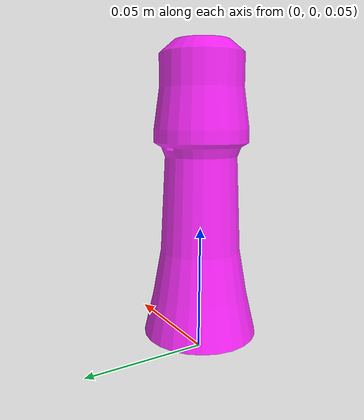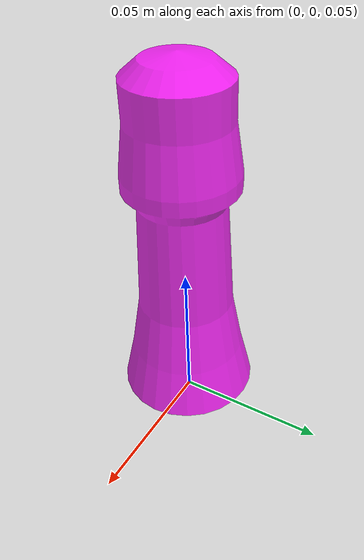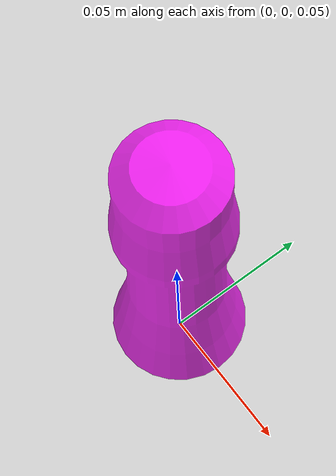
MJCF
<mujoco model="bottom_watertight_tiny">
  <default>
    <default group="2" type="mesh" contype="0" conaffinity="0">
      <geom group="2" type="mesh" contype="0" conaffinity="0"/>
    </default>
    <default group="3" type="mesh">
      <geom group="3" type="mesh"/>
    </default>
  </default>
  <asset>
    <mesh file="bottom_watertight_tiny.obj"/>
    <mesh file="bottom_watertight_tiny_collision_0.obj"/>
    <mesh file="bottom_watertight_tiny_collision_1.obj"/>
    <mesh file="bottom_watertight_tiny_collision_2.obj"/>
    <mesh file="bottom_watertight_tiny_collision_3.obj"/>
    <mesh file="bottom_watertight_tiny_collision_4.obj"/>
    <mesh file="bottom_watertight_tiny_collision_5.obj"/>
    <mesh file="bottom_watertight_tiny_collision_6.obj"/>
    <mesh file="bottom_watertight_tiny_collision_7.obj"/>
    <mesh file="bottom_watertight_tiny_collision_8.obj"/>
    <mesh file="bottom_watertight_tiny_collision_9.obj"/>
    <mesh file="bottom_watertight_tiny_collision_10.obj"/>
    <mesh file="bottom_watertight_tiny_collision_11.obj"/>
    <mesh file="bottom_watertight_tiny_collision_12.obj"/>
    <mesh file="bottom_watertight_tiny_collision_13.obj"/>
    <mesh file="bottom_watertight_tiny_collision_14.obj"/>
    <mesh file="bottom_watertight_tiny_collision_15.obj"/>
    <mesh file="bottom_watertight_tiny_collision_16.obj"/>
    <mesh file="bottom_watertight_tiny_collision_17.obj"/>
    <mesh file="bottom_watertight_tiny_collision_18.obj"/>
    <mesh file="bottom_watertight_tiny_collision_19.obj"/>
    <mesh file="bottom_watertight_tiny_collision_20.obj"/>
    <mesh file="bottom_watertight_tiny_collision_21.obj"/>
    <mesh file="bottom_watertight_tiny_collision_22.obj"/>
    <mesh file="bottom_watertight_tiny_collision_23.obj"/>
    <mesh file="bottom_watertight_tiny_collision_24.obj"/>
    <mesh file="bottom_watertight_tiny_collision_25.obj"/>
    <mesh file="bottom_watertight_tiny_collision_26.obj"/>
    <mesh file="bottom_watertight_tiny_collision_27.obj"/>
    <mesh file="bottom_watertight_tiny_collision_28.obj"/>
    <mesh file="bottom_watertight_tiny_collision_29.obj"/>
    <mesh file="bottom_watertight_tiny_collision_30.obj"/>
    <mesh file="bottom_watertight_tiny_collision_31.obj"/>
    <mesh file="bottom_watertight_tiny_collision_32.obj"/>
    <mesh file="bottom_watertight_tiny_collision_33.obj"/>
    <mesh file="bottom_watertight_tiny_collision_34.obj"/>
    <mesh file="bottom_watertight_tiny_collision_35.obj"/>
    <mesh file="bottom_watertight_tiny_collision_36.obj"/>
    <mesh file="bottom_watertight_tiny_collision_37.obj"/>
    <mesh file="bottom_watertight_tiny_collision_38.obj"/>
    <mesh file="bottom_watertight_tiny_collision_39.obj"/>
    <mesh file="bottom_watertight_tiny_collision_40.obj"/>
    <mesh file="bottom_watertight_tiny_collision_41.obj"/>
    <mesh file="bottom_watertight_tiny_collision_42.obj"/>
    <mesh file="bottom_watertight_tiny_collision_43.obj"/>
    <mesh file="bottom_watertight_tiny_collision_44.obj"/>
    <mesh file="bottom_watertight_tiny_collision_45.obj"/>
  </asset>
  <worldbody>
    <body name="bottom_watertight_tiny">
      <freejoint/>
      <geom mesh="bottom_watertight_tiny" group="2" type="mesh" rgba="1 0 1 0.8" contype="0" conaffinity="0"/>
      <geom mesh="bottom_watertight_tiny_collision_0" rgba="0.9421016590431367 0.4295423006999385 0.4772473852593627 1" group="3" type="mesh"/>
      <geom mesh="bottom_watertight_tiny_collision_1" rgba="0.1564351845515236 0.5539180612918909 0.802008377272998 1" group="3" type="mesh"/>
      <geom mesh="bottom_watertight_tiny_collision_2" rgba="0.9004269855679644 0.6677418246746807 0.19382898476810484 1" group="3" type="mesh"/>
      <geom mesh="bottom_watertight_tiny_collision_3" rgba="0.5575978403072669 0.5755522339741203 0.7672808572614295 1" group="3" type="mesh"/>
      <geom mesh="bottom_watertight_tiny_collision_4" rgba="0.050664887594296215 0.37647322269453243 0.08547653072307826 1" group="3" type="mesh"/>
      <geom mesh="bottom_watertight_tiny_collision_5" rgba="0.4213739520240328 0.32687512567219856 0.009920602645650534 1" group="3" type="mesh"/>
      <geom mesh="bottom_watertight_tiny_collision_6" rgba="0.2726108470352995 0.34344507423970083 0.08211541466282535 1" group="3" type="mesh"/>
      <geom mesh="bottom_watertight_tiny_collision_7" rgba="0.209656390244906 0.7569628128122862 0.10707746620259084 1" group="3" type="mesh"/>
      <geom mesh="bottom_watertight_tiny_collision_8" rgba="0.25317475710928106 0.7707558476400088 0.7540822614944259 1" group="3" type="mesh"/>
      <geom mesh="bottom_watertight_tiny_collision_9" rgba="0.331245156585243 0.6996805871700583 0.009986498375281982 1" group="3" type="mesh"/>
      <geom mesh="bottom_watertight_tiny_collision_10" rgba="0.3644299739436261 0.6023554082664958 0.5375104901850447 1" group="3" type="mesh"/>
      <geom mesh="bottom_watertight_tiny_collision_11" rgba="0.11351254824832557 0.9258838328475842 0.15512815887520648 1" group="3" type="mesh"/>
      <geom mesh="bottom_watertight_tiny_collision_12" rgba="0.06505928683881912 0.4292743657263626 0.7575145250857411 1" group="3" type="mesh"/>
      <geom mesh="bottom_watertight_tiny_collision_13" rgba="0.4694387354584154 0.4024197791657137 0.6528968626089501 1" group="3" type="mesh"/>
      <geom mesh="bottom_watertight_tiny_collision_14" rgba="0.38555748008515844 0.05350648839061001 0.04314232303130683 1" group="3" type="mesh"/>
      <geom mesh="bottom_watertight_tiny_collision_15" rgba="0.5018653866945066 0.28536465750207907 0.285600573605054 1" group="3" type="mesh"/>
      <geom mesh="bottom_watertight_tiny_collision_16" rgba="0.2885841742282278 0.11484371185836084 0.6374622385377419 1" group="3" type="mesh"/>
      <geom mesh="bottom_watertight_tiny_collision_17" rgba="0.2198935390615402 0.46916866972248616 0.5731089723840236 1" group="3" type="mesh"/>
      <geom mesh="bottom_watertight_tiny_collision_18" rgba="0.2653321208684818 0.24646622954153208 0.7672859701737712 1" group="3" type="mesh"/>
      <geom mesh="bottom_watertight_tiny_collision_19" rgba="0.897694818378677 0.7118719243561996 0.3061458683326824 1" group="3" type="mesh"/>
      <geom mesh="bottom_watertight_tiny_collision_20" rgba="0.8702845893420182 0.24583197183578354 0.5850663755475531 1" group="3" type="mesh"/>
      <geom mesh="bottom_watertight_tiny_collision_21" rgba="0.6159620466272289 0.1589913927677582 0.029974515071139796 1" group="3" type="mesh"/>
      <geom mesh="bottom_watertight_tiny_collision_22" rgba="0.6418068765041776 0.7568407788148714 0.3302895908270408 1" group="3" type="mesh"/>
      <geom mesh="bottom_watertight_tiny_collision_23" rgba="0.49876588439541913 0.726456532277409 0.38369284959784156 1" group="3" type="mesh"/>
      <geom mesh="bottom_watertight_tiny_collision_24" rgba="0.7062365071740999 0.984629234598314 0.3316765135285228 1" group="3" type="mesh"/>
      <geom mesh="bottom_watertight_tiny_collision_25" rgba="0.7694210651642691 0.6930414808966998 0.09524614367842332 1" group="3" type="mesh"/>
      <geom mesh="bottom_watertight_tiny_collision_26" rgba="0.2911826037413868 0.12479311797545867 0.34025567054163486 1" group="3" type="mesh"/>
      <geom mesh="bottom_watertight_tiny_collision_27" rgba="0.07095360940358841 0.4397360277175626 0.7667453877336858 1" group="3" type="mesh"/>
      <geom mesh="bottom_watertight_tiny_collision_28" rgba="0.23394590654754666 0.3329196305397468 0.1679757856385471 1" group="3" type="mesh"/>
      <geom mesh="bottom_watertight_tiny_collision_29" rgba="0.693174066530816 0.4990784067714581 0.14263645644712553 1" group="3" type="mesh"/>
      <geom mesh="bottom_watertight_tiny_collision_30" rgba="0.6622654653008889 0.6911383213170047 0.15885570962589501 1" group="3" type="mesh"/>
      <geom mesh="bottom_watertight_tiny_collision_31" rgba="0.6495744711322515 0.7399123191426145 0.36334379622761315 1" group="3" type="mesh"/>
      <geom mesh="bottom_watertight_tiny_collision_32" rgba="0.4857998602029353 0.4669579639154785 0.7336727538320122 1" group="3" type="mesh"/>
      <geom mesh="bottom_watertight_tiny_collision_33" rgba="0.1626324719127884 0.42275493461657665 0.6003403505982362 1" group="3" type="mesh"/>
      <geom mesh="bottom_watertight_tiny_collision_34" rgba="0.8028879947536873 0.8191197795249725 0.4483497909421402 1" group="3" type="mesh"/>
      <geom mesh="bottom_watertight_tiny_collision_35" rgba="0.016180955758664295 0.38387173463286384 0.10277014666387763 1" group="3" type="mesh"/>
      <geom mesh="bottom_watertight_tiny_collision_36" rgba="0.6430289699674492 0.7361954576017222 0.7611652295697081 1" group="3" type="mesh"/>
      <geom mesh="bottom_watertight_tiny_collision_37" rgba="0.6180132134260138 0.8863335084322751 0.5975213678052897 1" group="3" type="mesh"/>
      <geom mesh="bottom_watertight_tiny_collision_38" rgba="0.08594359310789768 0.1699395977599094 0.7245069508208686 1" group="3" type="mesh"/>
      <geom mesh="bottom_watertight_tiny_collision_39" rgba="0.07805980561325665 0.8806282238190799 0.4975869947678233 1" group="3" type="mesh"/>
      <geom mesh="bottom_watertight_tiny_collision_40" rgba="0.90447272934752 0.10001735545237767 0.20665529743982713 1" group="3" type="mesh"/>
      <geom mesh="bottom_watertight_tiny_collision_41" rgba="0.2529047699130952 0.99839552922128 0.30345737694817 1" group="3" type="mesh"/>
      <geom mesh="bottom_watertight_tiny_collision_42" rgba="0.5949964506315777 0.5701369826577033 0.8773738160059167 1" group="3" type="mesh"/>
      <geom mesh="bottom_watertight_tiny_collision_43" rgba="0.4581135979482456 0.9460041207443642 0.4618178563654377 1" group="3" type="mesh"/>
      <geom mesh="bottom_watertight_tiny_collision_44" rgba="0.33059064331412735 0.5038693132114359 0.05847307958439618 1" group="3" type="mesh"/>
      <geom mesh="bottom_watertight_tiny_collision_45" rgba="0.6552340343170117 0.7613552537848937 0.7528309297037065 1" group="3" type="mesh"/>
    </body>
  </worldbody>
</mujoco>
